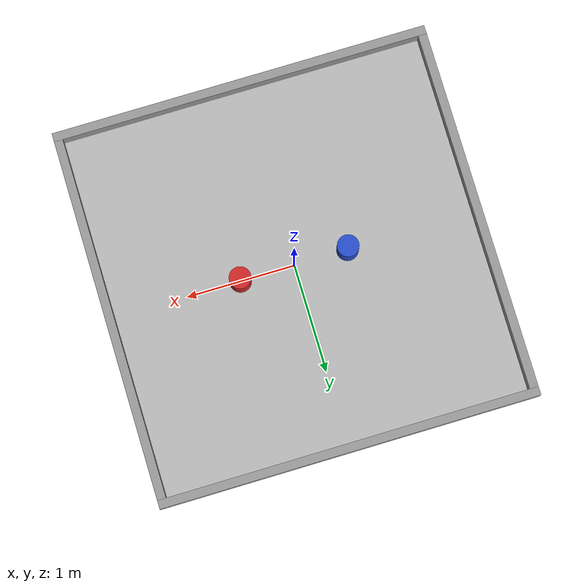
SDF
<sdf version="1.6">
 <world name="default">
  <light name="sun" type="directional">
   <pose>0 0 10 0 -0 0</pose>
   <diffuse>0.8 0.8 0.8 1</diffuse>
   <specular>0.2 0.2 0.2 1</specular>
   <attenuation>
    <range>1000</range>
    <constant>0.9</constant>
    <linear>0.01</linear>
    <quadratic>0.001</quadratic>
   </attenuation>
   <direction>-0.5 0.1 -0.9</direction>
  </light>
  <gravity>0 0 -9.8</gravity>
  <magnetic_field>6e-06 2.3e-05 -4.2e-05</magnetic_field>
  <atmosphere type="adiabatic"/>
  <physics name="default_physics" default="0" type="ode">
   <max_step_size>0.001</max_step_size>
   <real_time_factor>1</real_time_factor>
   <real_time_update_rate>1000</real_time_update_rate>
  </physics>
  <scene><ambient>0.4 0.4 0.4 1</ambient><background>0.7 0.7 0.7 1</background><shadows>1</shadows></scene>
  <spherical_coordinates>
   <surface_model>EARTH_WGS84</surface_model>
   <latitude_deg>0</latitude_deg>
   <longitude_deg>0</longitude_deg>
   <elevation>0</elevation>
   <heading_deg>0</heading_deg>
  </spherical_coordinates>
  <include><uri>model://task1</uri></include>
  <include><uri>model://cr3_arena_walls</uri></include>
 </world>
</sdf>

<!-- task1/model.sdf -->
<sdf version="1.4">
<model name="obstacle_avoidance">
  <static>true</static>
    <link name="floor">
      <collision name="collision">
        <geometry>
          <plane>
            <normal>0 0 1</normal>
            <size>3.5 3.5</size>
          </plane>
        </geometry>
        <surface>
          <friction>
            <ode>
              <mu>100</mu>
              <mu2>50</mu2>
            </ode>
          </friction>
        </surface>
      </collision>
      <visual name="visual">
        <cast_shadows>false</cast_shadows>
        <geometry>
          <plane>
            <normal>0 0 1</normal>
            <size>3.5 3.5</size>
          </plane>
        </geometry>
        <material>
          <script>
            <uri>model://task1/materials/scripts</uri>
            <uri>model://task1/materials/textures</uri>
            <name>Task1Floor/Image</name>
          </script>
        </material>
      </visual>
    </link>
    <link name='BLUE'>
      <pose frame=''>-0.5 0 0.125 0 0 0</pose>
      <collision name='coll'>
        <geometry>
          <cylinder>
            <radius>0.1</radius>
            <length>0.25</length>
          </cylinder>
        </geometry>
        <max_contacts>10</max_contacts>
        <surface>
          <bounce/>
          <friction>
            <ode/>
          </friction>
          <contact>
            <ode/>
          </contact>
        </surface>
      </collision>
      <visual name='vis'>
        <geometry>
          <cylinder>
            <radius>0.1</radius>
            <length>0.25</length>
          </cylinder>
        </geometry>
        <material>
          <script>
            <uri>file://media/materials/scripts/gazebo.material</uri>
            <name>Gazebo/Blue</name>
          </script>
        </material>
      </visual>
    </link>
    <link name='RED'>
      <pose frame=''>0.5 0 0.125 0 0 0</pose>
      <collision name='coll'>
        <geometry>
          <cylinder>
            <radius>0.1</radius>
            <length>0.25</length>
          </cylinder>
        </geometry>
        <max_contacts>10</max_contacts>
        <surface>
          <bounce/>
          <friction>
            <ode/>
          </friction>
          <contact>
            <ode/>
          </contact>
        </surface>
      </collision>
      <visual name='vis'>
        <geometry>
          <cylinder>
            <radius>0.1</radius>
            <length>0.25</length>
          </cylinder>
        </geometry>
        <material>
          <script>
            <uri>file://media/materials/scripts/gazebo.material</uri>
            <name>Gazebo/Red</name>
          </script>
        </material>
      </visual>
    </link>
  </model>
</sdf>

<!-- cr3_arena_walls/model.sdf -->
<sdf version='1.6'>
  <model name='small_arena_walls'>
    <pose frame=''>0 0 0.08 0 0 0</pose>
    <link name='Right_Wall'>
      <collision name='Right_Wall_Collision'>
        <geometry>
          <box>
            <size>3.50 0.08 0.16</size>
          </box>
        </geometry>
      </collision>
      <visual name='Right_Wall_Visual'>
        <geometry>
          <box>
            <size>3.50 0.08 0.16</size>
          </box>
        </geometry>
        <material>
          <script>
            <uri>file://media/materials/scripts/gazebo.material</uri>
            <name>Gazebo/Grey</name>
          </script>
          <ambient>1 1 1 1</ambient>
        </material>
      </visual>
      <pose frame=''>0 1.71 0 0 0 0</pose>
    </link>
    <link name='Back_Wall'>
      <collision name='Back_Wall_Collision'>
        <geometry>
          <box>
            <size>0.08 3.34 0.16</size>
          </box>
        </geometry>
      </collision>
      <visual name='Back_Wall_Visual'>
        <geometry>
          <box>
            <size>0.08 3.34 0.16</size>
          </box>
        </geometry>
        <material>
          <script>
            <uri>file://media/materials/scripts/gazebo.material</uri>
            <name>Gazebo/Grey</name>
          </script>
          <ambient>1 1 1 1</ambient>
        </material>
      </visual>
      <pose frame=''>-1.71 0 0 0 0 0</pose>
    </link>
    <link name='Left_Wall'>
      <collision name='Left_Wall_Collision'>
        <geometry>
          <box>
            <size>3.50 0.08 0.16</size>
          </box>
        </geometry>
      </collision>
      <visual name='Left_Wall_Visual'>
        <geometry>
          <box>
            <size>3.50 0.08 0.16</size>
          </box>
        </geometry>
        <material>
          <script>
            <uri>file://media/materials/scripts/gazebo.material</uri>
            <name>Gazebo/Grey</name>
          </script>
          <ambient>1 1 1 1</ambient>
        </material>
      </visual>
      <pose frame=''>0 -1.71 0 0 0 0</pose>
    </link>
    <link name='Front_Wall'>
      <collision name='Front_Wall_Collision'>
        <geometry>
          <box>
            <size>0.08 3.34 0.16</size>
          </box>
        </geometry>
      </collision>
      <visual name='Front_Wall_Visual'>
        <geometry>
          <box>
            <size>0.08 3.34 0.16</size>
          </box>
        </geometry>
        <material>
          <script>
            <uri>file://media/materials/scripts/gazebo.material</uri>
            <name>Gazebo/Grey</name>
          </script>
          <ambient>1 1 1 1</ambient>
        </material>
      </visual>
      <pose frame=''>1.71 0 0 0 0 0</pose>
    </link>
    <static>1</static>
  </model>
</sdf>
